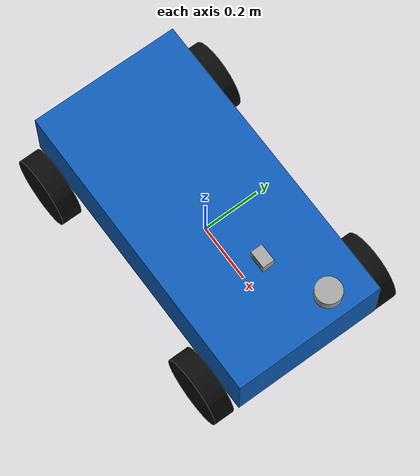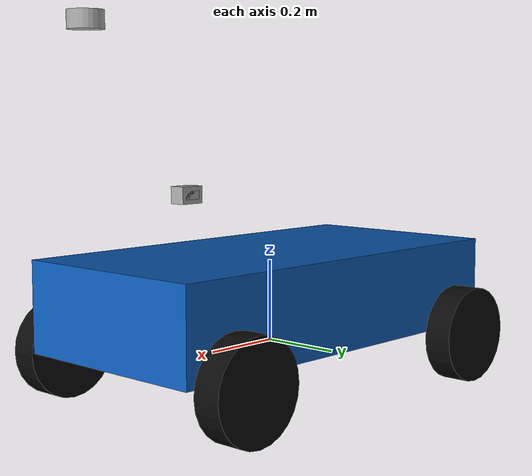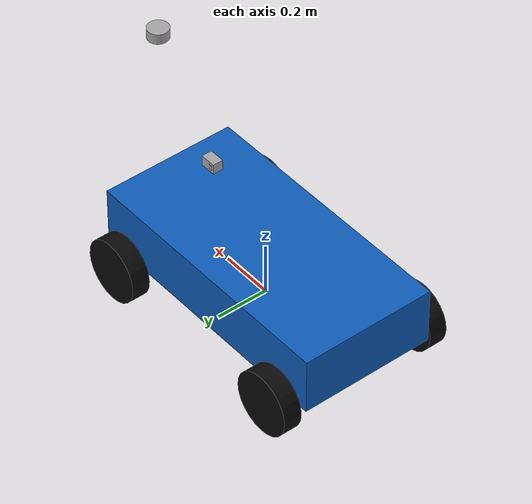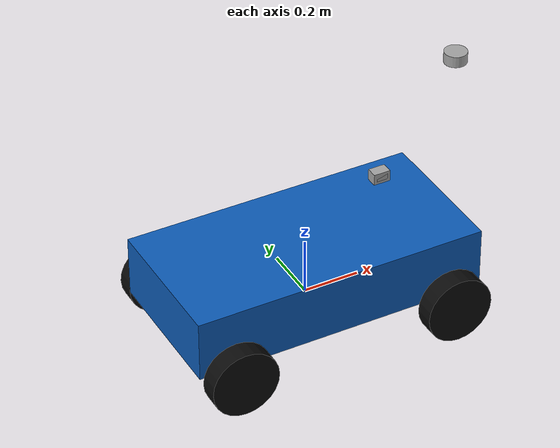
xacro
<?xml version="1.0"?>
<robot name="course_ackermann" xmlns:xacro="http://www.ros.org/wiki/xacro">
  <!-- SI units; x forward, y left, z up (REP-103). Dimensions from the course SDF. -->
  <xacro:property name="wheel_base" value="0.80"/>
  <xacro:property name="wheel_track" value="0.62"/>
  <xacro:property name="wheel_radius" value="0.12"/>
  <xacro:property name="wheel_width" value="0.07"/>
  <xacro:property name="sensor_x" value="0.28"/>
  <xacro:property name="sensor_z" value="0.38"/>

  <material name="body_blue"><color rgba="0.05 0.36 0.72 1"/></material>
  <material name="tire_black"><color rgba="0.04 0.04 0.04 1"/></material>
  <material name="sensor_gray"><color rgba="0.65 0.65 0.65 1"/></material>

  <link name="base_link">
    <inertial>
      <origin xyz="0 0 0.12" rpy="0 0 0"/>
      <mass value="12.0"/>
      <inertia ixx="0.55" ixy="0" ixz="0" iyy="1.10" iyz="0" izz="1.40"/>
    </inertial>
    <visual>
      <origin xyz="0 0 0.12" rpy="0 0 0"/>
      <geometry><box size="1.05 0.52 0.22"/></geometry>
      <material name="body_blue"/>
    </visual>
    <collision>
      <origin xyz="0 0 0.12" rpy="0 0 0"/>
      <geometry><box size="1.05 0.52 0.22"/></geometry>
    </collision>
  </link>

  <xacro:macro name="knuckle" params="side y">
    <link name="front_${side}_knuckle">
      <inertial><mass value="0.2"/><inertia ixx="0.001" ixy="0" ixz="0" iyy="0.001" iyz="0" izz="0.001"/></inertial>
    </link>
    <joint name="front_${side}_steering_joint" type="revolute">
      <parent link="base_link"/><child link="front_${side}_knuckle"/>
      <origin xyz="${wheel_base/2} ${y} 0" rpy="0 0 0"/>
      <axis xyz="0 0 1"/><limit lower="-0.55" upper="0.55" effort="25" velocity="1"/>
    </joint>
  </xacro:macro>

  <xacro:macro name="wheel" params="axle side y parent x">
    <link name="${axle}_${side}_wheel">
      <inertial>
        <mass value="0.8"/>
        <inertia ixx="0.006" ixy="0" ixz="0" iyy="0.003" iyz="0" izz="0.006"/>
      </inertial>
      <visual>
        <origin xyz="0 0 0" rpy="${pi/2} 0 0"/>
        <geometry><cylinder radius="${wheel_radius}" length="${wheel_width}"/></geometry>
        <material name="tire_black"/>
      </visual>
      <collision>
        <origin xyz="0 0 0" rpy="${pi/2} 0 0"/>
        <geometry><cylinder radius="${wheel_radius}" length="${wheel_width}"/></geometry>
      </collision>
    </link>
    <joint name="${axle}_${side}_wheel_joint" type="continuous">
      <parent link="${parent}"/><child link="${axle}_${side}_wheel"/>
      <origin xyz="${x} ${y} 0" rpy="0 0 0"/>
      <axis xyz="0 1 0"/>
    </joint>
  </xacro:macro>

  <xacro:knuckle side="left" y="${wheel_track/2}"/>
  <xacro:knuckle side="right" y="${-wheel_track/2}"/>
  <xacro:wheel axle="front" side="left" y="0" parent="front_left_knuckle" x="0"/>
  <xacro:wheel axle="front" side="right" y="0" parent="front_right_knuckle" x="0"/>
  <xacro:wheel axle="rear" side="left" y="${wheel_track/2}" parent="base_link" x="${-wheel_base/2}"/>
  <xacro:wheel axle="rear" side="right" y="${-wheel_track/2}" parent="base_link" x="${-wheel_base/2}"/>

  <link name="camera_link">
    <inertial><mass value="0.033333333333"/><inertia ixx="0.000333333333" ixy="0" ixz="0" iyy="0.000333333333" iyz="0" izz="0.000333333333"/></inertial>
    <visual><geometry><box size="0.06 0.04 0.04"/></geometry><material name="sensor_gray"/></visual>
    <collision><geometry><box size="0.06 0.04 0.04"/></geometry></collision>
  </link>
  <joint name="camera_joint" type="fixed">
    <parent link="base_link"/><child link="camera_link"/>
    <origin xyz="${sensor_x} 0 ${sensor_z}" rpy="0 0 0"/>
  </joint>

  <link name="lidar_link">
    <inertial><mass value="0.033333333333"/><inertia ixx="0.000333333333" ixy="0" ixz="0" iyy="0.000333333333" iyz="0" izz="0.000333333333"/></inertial>
    <visual><geometry><cylinder radius="0.04" length="0.04"/></geometry><material name="sensor_gray"/></visual>
    <collision><geometry><cylinder radius="0.04" length="0.04"/></geometry></collision>
  </link>
  <joint name="lidar_joint" type="fixed">
    <parent link="camera_link"/><child link="lidar_link"/>
    <origin xyz="${sensor_x} 0 ${sensor_z}" rpy="0 0 0"/>
  </joint>

  <link name="imu_link">
    <inertial><mass value="0.033333333334"/><inertia ixx="0.000333333334" ixy="0" ixz="0" iyy="0.000333333334" iyz="0" izz="0.000333333334"/></inertial>
    <visual><geometry><box size="0.04 0.04 0.02"/></geometry><material name="sensor_gray"/></visual>
    <collision><geometry><box size="0.04 0.04 0.02"/></geometry></collision>
  </link>
  <joint name="imu_joint" type="fixed">
    <parent link="base_link"/><child link="imu_link"/>
    <origin xyz="${sensor_x} 0 ${sensor_z}" rpy="0 0 0"/>
  </joint>
</robot>
